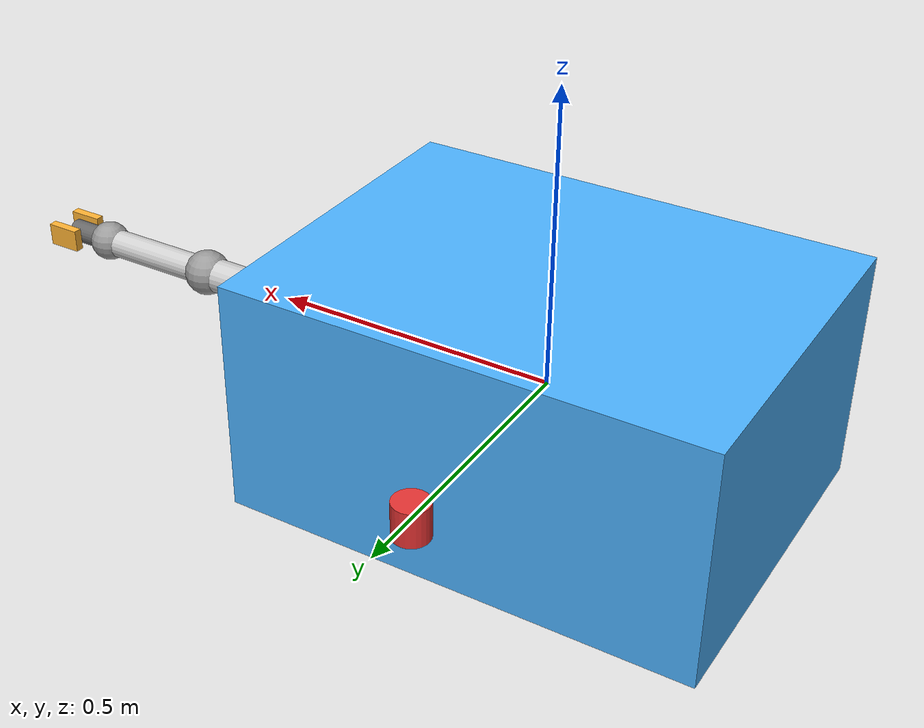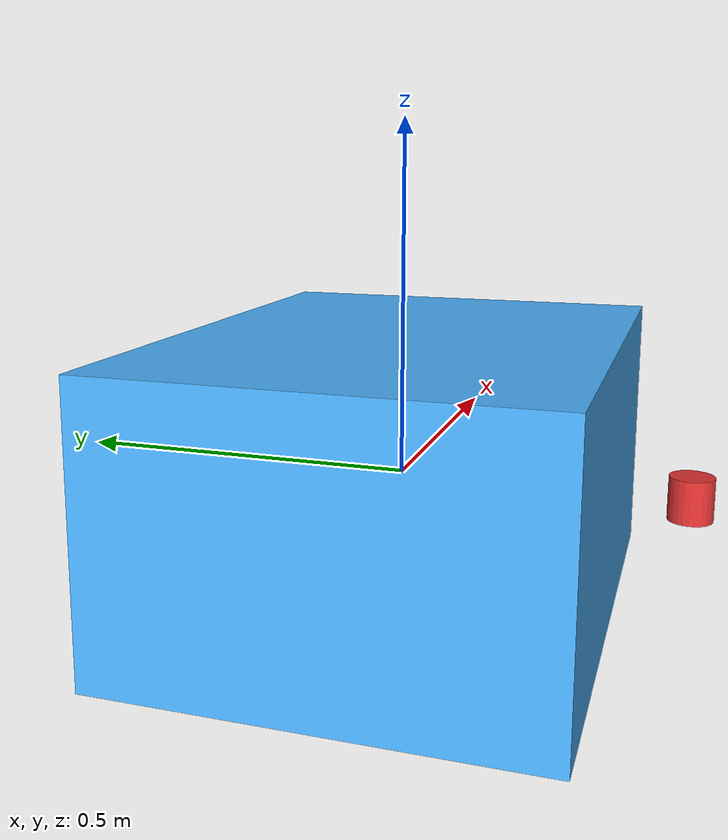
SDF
<?xml version="1.0" ?>
<sdf version="1.8">
  <model name="chaser">
    <static>false</static>

    <link name="body">
      <pose>0 0 0 0 0 0</pose>
      <inertial>
        <mass>10.0</mass>
        <inertia>
          <ixx>0.5</ixx>
          <iyy>0.5</iyy>
          <izz>0.5</izz>
        </inertia>
      </inertial>

      <visual name="body_visual">
        <geometry><box><size>0.8 0.6 0.4</size></box></geometry>
        <material><ambient>0.2 0.6 0.9 1</ambient><diffuse>0.3 0.7 1.0 1</diffuse></material>
      </visual>

      <collision name="body_collision">
        <geometry><box><size>0.8 0.6 0.4</size></box></geometry>
      </collision>

      <!-- sides: thruster markers (visual only) -->
      <visual name="thruster_left">
        <pose>0 0.4 0 0 0 0</pose>
        <geometry><cylinder><radius>0.03</radius><length>0.06</length></cylinder></geometry>
        <material><ambient>0.9 0.2 0.2 1</ambient></material>
      </visual>
      <visual name="thruster_right">
        <pose>0 -0.4 0 0 0 0</pose>
        <geometry><cylinder><radius>0.03</radius><length>0.06</length></cylinder></geometry>
        <material><ambient>0.9 0.2 0.2 1</ambient></material>
      </visual>
      <visual name="thruster_front">
        <pose>0.4 0 0 0 0 0</pose>
        <geometry><cylinder><radius>0.03</radius><length>0.06</length></cylinder></geometry>
        <material><ambient>0.9 0.2 0.2 1</ambient></material>
      </visual>

      <!-- Robotic Arm Assembly -->
      <!-- Arm Base -->
      <visual name="arm_base">
        <pose>0.4 0 0 0 0 0</pose>
        <geometry><cylinder><radius>0.06</radius><length>0.08</length></cylinder></geometry>
        <material><ambient>0.5 0.5 0.5 1</ambient><diffuse>0.6 0.6 0.6 1</diffuse></material>
      </visual>

      <!-- Lower Arm Segment -->
      <visual name="arm_lower">
        <pose>0.55 0 0 0 1.5708 0</pose>
        <geometry><cylinder><radius>0.03</radius><length>0.25</length></cylinder></geometry>
        <material><ambient>0.7 0.7 0.7 1</ambient><diffuse>0.8 0.8 0.8 1</diffuse></material>
      </visual>

      <!-- Elbow Joint -->
      <visual name="arm_elbow">
        <pose>0.675 0 0 0 0 0</pose>
        <geometry><sphere><radius>0.04</radius></sphere></geometry>
        <material><ambient>0.5 0.5 0.5 1</ambient><diffuse>0.6 0.6 0.6 1</diffuse></material>
      </visual>

      <!-- Upper Arm Segment -->
      <visual name="arm_upper">
        <pose>0.8 0 0 0 1.5708 0</pose>
        <geometry><cylinder><radius>0.025</radius><length>0.2</length></cylinder></geometry>
        <material><ambient>0.7 0.7 0.7 1</ambient><diffuse>0.8 0.8 0.8 1</diffuse></material>
      </visual>

      <!-- Wrist Joint -->
      <visual name="arm_wrist">
        <pose>0.9 0 0 0 0 0</pose>
        <geometry><sphere><radius>0.035</radius></sphere></geometry>
        <material><ambient>0.5 0.5 0.5 1</ambient><diffuse>0.6 0.6 0.6 1</diffuse></material>
      </visual>

      <!-- Gripper Base -->
      <visual name="gripper_base">
        <pose>0.95 0 0 0 1.5708 0</pose>
        <geometry><cylinder><radius>0.02</radius><length>0.06</length></cylinder></geometry>
        <material><ambient>0.3 0.3 0.3 1</ambient><diffuse>0.4 0.4 0.4 1</diffuse></material>
      </visual>

      <!-- Left Gripper Finger -->
      <visual name="gripper_left">
        <pose>0.98 0.03 0 0 0 0</pose>
        <geometry><box><size>0.06 0.015 0.04</size></box></geometry>
        <material><ambient>0.9 0.6 0.1 1</ambient><diffuse>1.0 0.7 0.2 1</diffuse></material>
      </visual>

      <!-- Right Gripper Finger -->
      <visual name="gripper_right">
        <pose>0.98 -0.03 0 0 0 0</pose>
        <geometry><box><size>0.06 0.015 0.04</size></box></geometry>
        <material><ambient>0.9 0.6 0.1 1</ambient><diffuse>1.0 0.7 0.2 1</diffuse></material>
      </visual>

    </link>
  </model>
</sdf>
